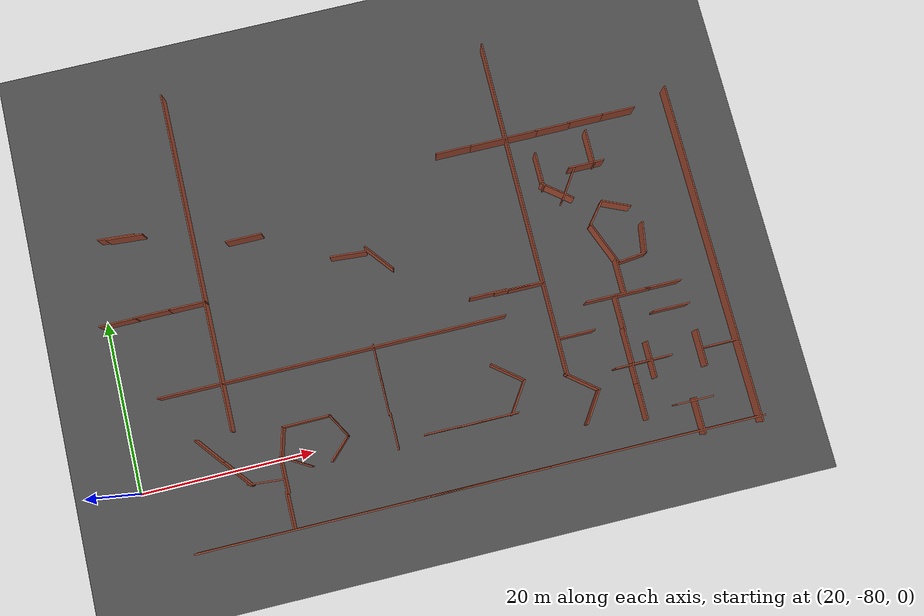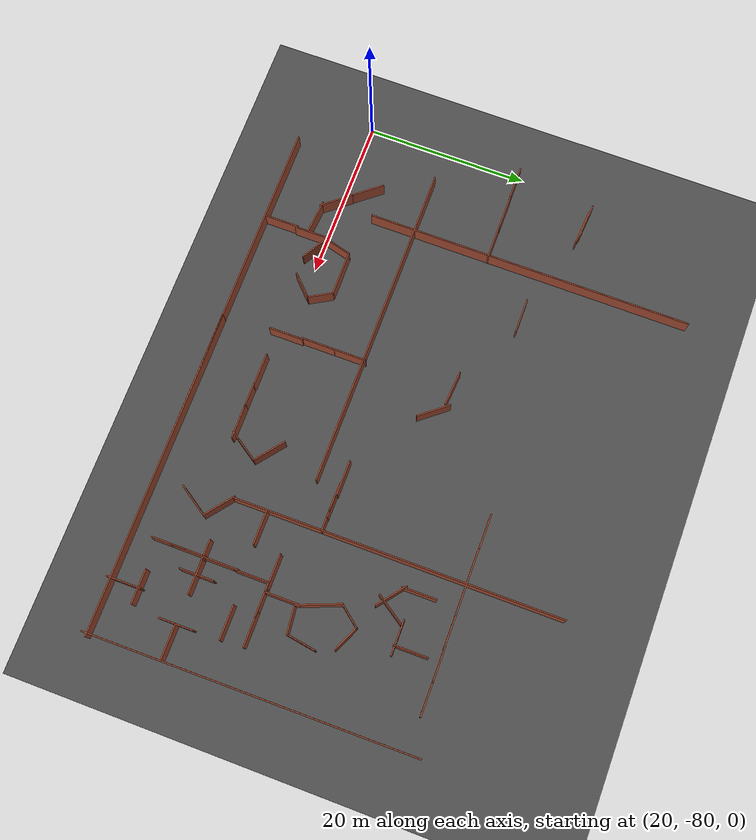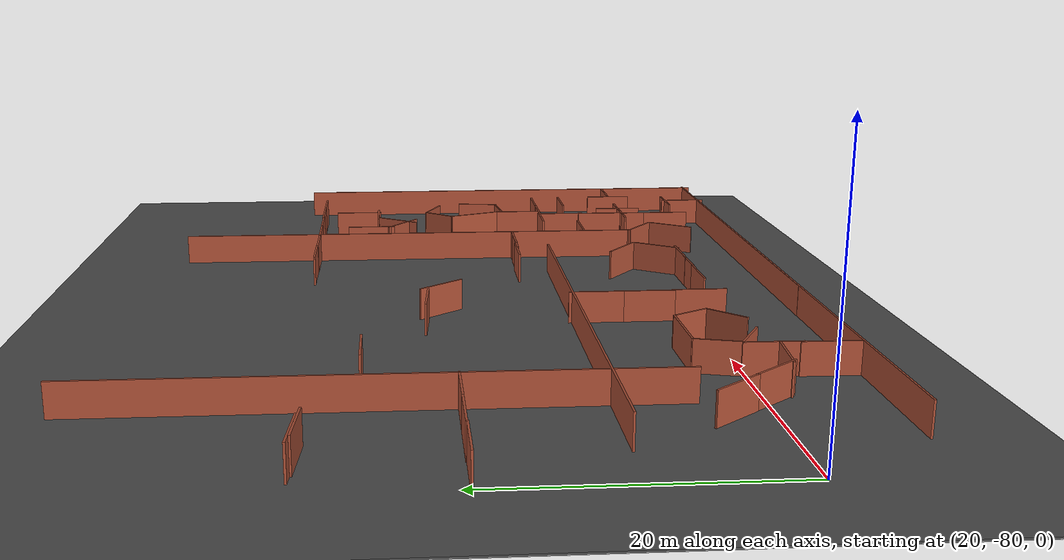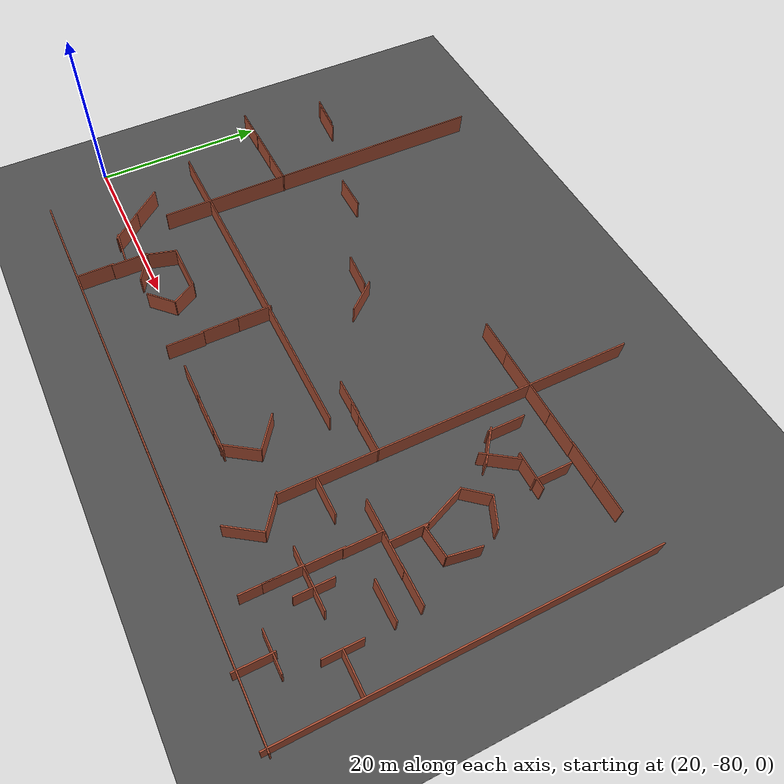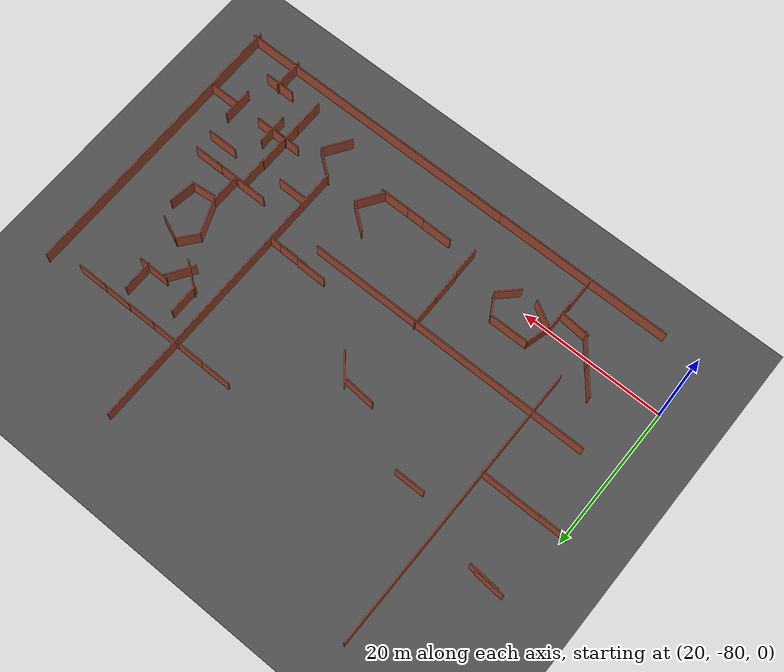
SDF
<sdf version="1.6">
 <world name="default">
  <model name="ground_plane">
   <static>1</static>
   <link name="link">
    <collision name="collision">
     <geometry><plane><normal>0 0 1</normal><size>200 200</size></plane></geometry>
     <surface><friction><ode><mu>100</mu><mu2>50</mu2></ode></friction></surface>
    </collision>
    <visual name="visual">
     <cast_shadows>0</cast_shadows>
     <geometry><plane><normal>0 0 1</normal><size>200 200</size></plane></geometry>
     <material>
      <script><uri>file://media/materials/scripts/gazebo.material</uri><name>Gazebo/Grey</name></script>
     </material>
    </visual>
   </link>
  </model>
  <model name="asphalt_plane">
   <static>1</static>
   <link name="link">
    <collision name="collision"><geometry><box><size>200 200 0.1</size></box></geometry></collision>
    <visual name="visual">
     <cast_shadows>0</cast_shadows>
     <geometry><box><size>200 200 0.1</size></box></geometry>
     <material>
      <script>
       <uri>model://asphalt_plane/materials/scripts</uri>
       <uri>model://asphalt_plane/materials/textures</uri>
       <name>vrc/asphalt</name>
      </script>
     </material>
    </visual>
   </link>
  </model>
  <model name="longwall_0_clone">
   <pose>70.0948 -58.1794 0 0 0 -1.57092</pose>
   <link name="Wall_0">
    <collision name="Wall_0_Collision">
     <geometry><box><size>40.5 0.15 2.5</size></box></geometry>
     <pose>0 0 1.25 0 -0 0</pose>
    </collision>
    <visual name="Wall_0_Visual">
     <pose>0 0 1.25 0 -0 0</pose>
     <geometry><box><size>40.5 0.15 2.5</size></box></geometry>
     <material>
      <script><uri>file://media/materials/scripts/gazebo.material</uri><name>Gazebo/Bricks</name></script>
      <ambient>1 1 1 1</ambient>
     </material>
    </visual>
    <pose>1e-06 0 0 0 -0 0</pose>
   </link>
   <static>1</static>
  </model>
  <model name="worlds_0_clone">
   <pose>49 -59 0 0 -0 1.49697</pose>
   <link name="Wall_0">
    <collision name="Wall_0_Collision">
     <geometry><box><size>4.25 0.15 2.5</size></box></geometry>
     <pose>0 0 1.25 0 -0 0</pose>
    </collision>
    <visual name="Wall_0_Visual">
     <pose>0 0 1.25 0 -0 0</pose>
     <geometry><box><size>4.25 0.15 2.5</size></box></geometry>
     <material>
      <script><uri>file://media/materials/scripts/gazebo.material</uri><name>Gazebo/Bricks</name></script>
      <ambient>1 1 1 1</ambient>
     </material>
    </visual>
    <pose>0 -0 0 0 -0 1.5708</pose>
   </link>
   <static>1</static>
  </model>
  <model name="worlds_2_clone">
   <pose>52.3469 -60.1873 0 0 -0 0.67691</pose>
   <link name="Wall_0">
    <collision name="Wall_0_Collision">
     <geometry><box><size>4.25 0.15 2.5</size></box></geometry>
     <pose>0 0 1.25 0 -0 0</pose>
    </collision>
    <visual name="Wall_0_Visual">
     <pose>0 0 1.25 0 -0 0</pose>
     <geometry><box><size>4.25 0.15 2.5</size></box></geometry>
     <material>
      <script><uri>file://media/materials/scripts/gazebo.material</uri><name>Gazebo/Bricks</name></script>
      <ambient>1 1 1 1</ambient>
     </material>
    </visual>
    <pose>0 -0 0 0 -0 1.5708</pose>
   </link>
   <static>1</static>
  </model>
  <model name="worlds_1_clone_0_clone">
   <pose>63.736 -49.7946 0 0 0 -1.57092</pose>
   <link name="Wall_0">
    <collision name="Wall_0_Collision">
     <geometry><box><size>4.25 0.15 2.5</size></box></geometry>
     <pose>0 0 1.25 0 -0 0</pose>
    </collision>
    <visual name="Wall_0_Visual">
     <pose>0 0 1.25 0 -0 0</pose>
     <geometry><box><size>4.25 0.15 2.5</size></box></geometry>
     <material>
      <script><uri>file://media/materials/scripts/gazebo.material</uri><name>Gazebo/Bricks</name></script>
      <ambient>1 1 1 1</ambient>
     </material>
    </visual>
    <pose>0 -0 0 0 -0 1.5708</pose>
   </link>
   <static>1</static>
  </model>
  <model name="worlds_1_clone_0_clone_clone">
   <pose>67.9203 -49.8236 0 0 0 -1.57092</pose>
   <link name="Wall_0">
    <collision name="Wall_0_Collision">
     <geometry><box><size>4.25 0.15 2.5</size></box></geometry>
     <pose>0 0 1.25 0 -0 0</pose>
    </collision>
    <visual name="Wall_0_Visual">
     <pose>0 0 1.25 0 -0 0</pose>
     <geometry><box><size>4.25 0.15 2.5</size></box></geometry>
     <material>
      <script><uri>file://media/materials/scripts/gazebo.material</uri><name>Gazebo/Bricks</name></script>
      <ambient>1 1 1 1</ambient>
     </material>
    </visual>
    <pose>0 -0 0 0 -0 1.5708</pose>
   </link>
   <static>1</static>
  </model>
  <model name="worlds_1_clone_0_clone_clone_0_clone_clone_0">
   <pose>37.6699 -54.2985 0 0 0 -1.57092</pose>
   <link name="Wall_0">
    <collision name="Wall_0_Collision">
     <geometry><box><size>4.25 0.15 2.5</size></box></geometry>
     <pose>0 0 1.25 0 -0 0</pose>
    </collision>
    <visual name="Wall_0_Visual">
     <pose>0 0 1.25 0 -0 0</pose>
     <geometry><box><size>4.25 0.15 2.5</size></box></geometry>
     <material>
      <script><uri>file://media/materials/scripts/gazebo.material</uri><name>Gazebo/Bricks</name></script>
      <ambient>1 1 1 1</ambient>
     </material>
    </visual>
    <pose>0 -0 0 0 -0 1.5708</pose>
   </link>
   <static>1</static>
  </model>
  <model name="longwall_clone_clone_1">
   <pose>45.3217 -87.8888 0 0 -0 0</pose>
   <link name="Wall_0">
    <collision name="Wall_0_Collision">
     <geometry><box><size>40.5 0.15 2.5</size></box></geometry>
     <pose>0 0 1.25 0 -0 0</pose>
    </collision>
    <visual name="Wall_0_Visual">
     <pose>0 0 1.25 0 -0 0</pose>
     <geometry><box><size>40.5 0.15 2.5</size></box></geometry>
     <material>
      <script><uri>file://media/materials/scripts/gazebo.material</uri><name>Gazebo/Bricks</name></script>
      <ambient>1 1 1 1</ambient>
     </material>
    </visual>
    <pose>1e-06 0 0 0 -0 0</pose>
   </link>
   <static>1</static>
  </model>
  <model name="longwall_clone_clone_3_clone_0">
   <pose>89.9316 -68.2995 0 0 0 -1.56602</pose>
   <link name="Wall_0">
    <collision name="Wall_0_Collision">
     <geometry><box><size>40.5 0.15 2.5</size></box></geometry>
     <pose>0 0 1.25 0 -0 0</pose>
    </collision>
    <visual name="Wall_0_Visual">
     <pose>0 0 1.25 0 -0 0</pose>
     <geometry><box><size>40.5 0.15 2.5</size></box></geometry>
     <material>
      <script><uri>file://media/materials/scripts/gazebo.material</uri><name>Gazebo/Bricks</name></script>
      <ambient>1 1 1 1</ambient>
     </material>
    </visual>
    <pose>1e-06 0 0 0 -0 0</pose>
   </link>
   <static>1</static>
  </model>
  <model name="longwall_clone_clone_0">
   <pose>44.6402 -70.1055 0 0 -0 0</pose>
   <link name="Wall_0">
    <collision name="Wall_0_Collision">
     <geometry><box><size>40.5 0.15 2.5</size></box></geometry>
     <pose>0 0 1.25 0 -0 0</pose>
    </collision>
    <visual name="Wall_0_Visual">
     <pose>0 0 1.25 0 -0 0</pose>
     <geometry><box><size>40.5 0.15 2.5</size></box></geometry>
     <material>
      <script><uri>file://media/materials/scripts/gazebo.material</uri><name>Gazebo/Bricks</name></script>
      <ambient>1 1 1 1</ambient>
     </material>
    </visual>
    <pose>1e-06 0 0 0 -0 0</pose>
   </link>
   <static>1</static>
  </model>
  <model name="longwall_0_clone_clone">
   <pose>31.77 -55.4466 0 0 0 -1.57092</pose>
   <link name="Wall_0">
    <collision name="Wall_0_Collision">
     <geometry><box><size>40.5 0.15 2.5</size></box></geometry>
     <pose>0 0 1.25 0 -0 0</pose>
    </collision>
    <visual name="Wall_0_Visual">
     <pose>0 0 1.25 0 -0 0</pose>
     <geometry><box><size>40.5 0.15 2.5</size></box></geometry>
     <material>
      <script><uri>file://media/materials/scripts/gazebo.material</uri><name>Gazebo/Bricks</name></script>
      <ambient>1 1 1 1</ambient>
     </material>
    </visual>
    <pose>1e-06 0 0 0 -0 0</pose>
   </link>
   <static>1</static>
  </model>
  <model name="worlds_1_clone_0_clone_clone_0_clone_clone_clone">
   <pose>71.7506 -49.7978 0 0 0 -1.57092</pose>
   <link name="Wall_0">
    <collision name="Wall_0_Collision">
     <geometry><box><size>4.25 0.15 2.5</size></box></geometry>
     <pose>0 0 1.25 0 -0 0</pose>
    </collision>
    <visual name="Wall_0_Visual">
     <pose>0 0 1.25 0 -0 0</pose>
     <geometry><box><size>4.25 0.15 2.5</size></box></geometry>
     <material>
      <script><uri>file://media/materials/scripts/gazebo.material</uri><name>Gazebo/Bricks</name></script>
      <ambient>1 1 1 1</ambient>
     </material>
    </visual>
    <pose>0 -0 0 0 -0 1.5708</pose>
   </link>
   <static>1</static>
  </model>
  <model name="worlds_1_clone_0_clone_clone_0_clone_clone_clone_0">
   <pose>75.7367 -49.7778 0 0 0 -1.57092</pose>
   <link name="Wall_0">
    <collision name="Wall_0_Collision">
     <geometry><box><size>4.25 0.15 2.5</size></box></geometry>
     <pose>0 0 1.25 0 -0 0</pose>
    </collision>
    <visual name="Wall_0_Visual">
     <pose>0 0 1.25 0 -0 0</pose>
     <geometry><box><size>4.25 0.15 2.5</size></box></geometry>
     <material>
      <script><uri>file://media/materials/scripts/gazebo.material</uri><name>Gazebo/Bricks</name></script>
      <ambient>1 1 1 1</ambient>
     </material>
    </visual>
    <pose>0 -0 0 0 -0 1.5708</pose>
   </link>
   <static>1</static>
  </model>
  <model name="worlds_1_clone_0_clone_clone_0_clone_clone_clone_1">
   <pose>79.6674 -49.7138 0 0 0 -1.57092</pose>
   <link name="Wall_0">
    <collision name="Wall_0_Collision">
     <geometry><box><size>4.25 0.15 2.5</size></box></geometry>
     <pose>0 0 1.25 0 -0 0</pose>
    </collision>
    <visual name="Wall_0_Visual">
     <pose>0 0 1.25 0 -0 0</pose>
     <geometry><box><size>4.25 0.15 2.5</size></box></geometry>
     <material>
      <script><uri>file://media/materials/scripts/gazebo.material</uri><name>Gazebo/Bricks</name></script>
      <ambient>1 1 1 1</ambient>
     </material>
    </visual>
    <pose>0 -0 0 0 -0 1.5708</pose>
   </link>
   <static>1</static>
  </model>
  <model name="worlds_1_clone_0_clone_clone_0_clone_clone_clone_2">
   <pose>83.5636 -49.7075 0 0 0 -1.57092</pose>
   <link name="Wall_0">
    <collision name="Wall_0_Collision">
     <geometry><box><size>4.25 0.15 2.5</size></box></geometry>
     <pose>0 0 1.25 0 -0 0</pose>
    </collision>
    <visual name="Wall_0_Visual">
     <pose>0 0 1.25 0 -0 0</pose>
     <geometry><box><size>4.25 0.15 2.5</size></box></geometry>
     <material>
      <script><uri>file://media/materials/scripts/gazebo.material</uri><name>Gazebo/Bricks</name></script>
      <ambient>1 1 1 1</ambient>
     </material>
    </visual>
    <pose>0 -0 0 0 -0 1.5708</pose>
   </link>
   <static>1</static>
  </model>
  <model name="worlds_1_clone_1_clone_clone_0_clone">
   <pose>49.3914 -71.9286 0 0 -0 0</pose>
   <link name="Wall_0">
    <collision name="Wall_0_Collision">
     <geometry><box><size>4.25 0.15 2.5</size></box></geometry>
     <pose>0 0 1.25 0 -0 0</pose>
    </collision>
    <visual name="Wall_0_Visual">
     <pose>0 0 1.25 0 -0 0</pose>
     <geometry><box><size>4.25 0.15 2.5</size></box></geometry>
     <material>
      <script><uri>file://media/materials/scripts/gazebo.material</uri><name>Gazebo/Bricks</name></script>
      <ambient>1 1 1 1</ambient>
     </material>
    </visual>
    <pose>0 -0 0 0 -0 1.5708</pose>
   </link>
   <static>1</static>
  </model>
  <model name="worlds_1_clone_1_clone_clone_0_clone_0">
   <pose>49.402 -75.9018 0 0 -0 0</pose>
   <link name="Wall_0">
    <collision name="Wall_0_Collision">
     <geometry><box><size>4.25 0.15 2.5</size></box></geometry>
     <pose>0 0 1.25 0 -0 0</pose>
    </collision>
    <visual name="Wall_0_Visual">
     <pose>0 0 1.25 0 -0 0</pose>
     <geometry><box><size>4.25 0.15 2.5</size></box></geometry>
     <material>
      <script><uri>file://media/materials/scripts/gazebo.material</uri><name>Gazebo/Bricks</name></script>
      <ambient>1 1 1 1</ambient>
     </material>
    </visual>
    <pose>0 -0 0 0 -0 1.5708</pose>
   </link>
   <static>1</static>
  </model>
  <model name="worlds_1_clone_1_clone_clone_0_clone_1">
   <pose>49.5458 -79.924 0 0 -0 0</pose>
   <link name="Wall_0">
    <collision name="Wall_0_Collision">
     <geometry><box><size>4.25 0.15 2.5</size></box></geometry>
     <pose>0 0 1.25 0 -0 0</pose>
    </collision>
    <visual name="Wall_0_Visual">
     <pose>0 0 1.25 0 -0 0</pose>
     <geometry><box><size>4.25 0.15 2.5</size></box></geometry>
     <material>
      <script><uri>file://media/materials/scripts/gazebo.material</uri><name>Gazebo/Bricks</name></script>
      <ambient>1 1 1 1</ambient>
     </material>
    </visual>
    <pose>0 -0 0 0 -0 1.5708</pose>
   </link>
   <static>1</static>
  </model>
  <model name="room1_clone_0">
   <pose>40.4655 -79.0163 0 0 -0 0</pose>
   <link name="Wall_11">
    <collision name="Wall_11_Collision">
     <geometry><box><size>3.25 0.15 2.5</size></box></geometry>
     <pose>0 0 1.25 0 -0 0</pose>
    </collision>
    <visual name="Wall_11_Visual">
     <pose>0 0 1.25 0 -0 0</pose>
     <geometry><box><size>3.25 0.15 2.5</size></box></geometry>
     <material>
      <script><uri>file://media/materials/scripts/gazebo.material</uri><name>Gazebo/Bricks</name></script>
      <ambient>1 1 1 1</ambient>
     </material>
    </visual>
    <pose>3.12132 1.19483 0 0 0 -1.0472</pose>
   </link>
   <link name="Wall_12">
    <collision name="Wall_12_Collision">
     <geometry><box><size>3.5 0.15 2.5</size></box></geometry>
     <pose>0 0 1.25 0 -0 0</pose>
    </collision>
    <visual name="Wall_12_Visual">
     <pose>0 0 1.25 0 -0 0</pose>
     <geometry><box><size>3.5 0.15 2.5</size></box></geometry>
     <material>
      <script><uri>file://media/materials/scripts/gazebo.material</uri><name>Gazebo/Bricks</name></script>
      <ambient>1 1 1 1</ambient>
     </material>
    </visual>
    <pose>2.71192 -1.33192 0 0 0 -2.35619</pose>
   </link>
   <link name="Wall_7">
    <collision name="Wall_7_Collision">
     <geometry><box><size>5.52935 0.15 2.5</size></box></geometry>
     <pose>0 0 1.25 0 -0 0</pose>
    </collision>
    <visual name="Wall_7_Visual">
     <pose>0 0 1.25 0 -0 0</pose>
     <geometry><box><size>5.52935 0.15 2.5</size></box></geometry>
     <material>
      <script><uri>file://media/materials/scripts/gazebo.material</uri><name>Gazebo/Bricks</name></script>
      <ambient>1 1 1 1</ambient>
     </material>
    </visual>
    <pose>-0.343285 2.51793 0 0 0 -3.13444</pose>
   </link>
   <link name="Wall_8">
    <collision name="Wall_8_Collision">
     <geometry><box><size>3.5 0.15 2.5</size></box></geometry>
     <pose>0 0 1.25 0 -0 0</pose>
    </collision>
    <visual name="Wall_8_Visual">
     <pose>0 0 1.25 0 -0 0</pose>
     <geometry><box><size>3.5 0.15 2.5</size></box></geometry>
     <material>
      <script><uri>file://media/materials/scripts/gazebo.material</uri><name>Gazebo/Bricks</name></script>
      <ambient>1 1 1 1</ambient>
     </material>
    </visual>
    <pose>-3.46641 0.880761 0 0 0 -1.8326</pose>
   </link>
   <link name="Wall_9">
    <collision name="Wall_9_Collision">
     <geometry><box><size>3.75 0.15 2.5</size></box></geometry>
     <pose>0 0 1.25 0 -0 0</pose>
    </collision>
    <visual name="Wall_9_Visual">
     <pose>0 0 1.25 0 -0 0</pose>
     <geometry><box><size>3.75 0.15 2.5</size></box></geometry>
     <material>
      <script><uri>file://media/materials/scripts/gazebo.material</uri><name>Gazebo/Bricks</name></script>
      <ambient>1 1 1 1</ambient>
     </material>
    </visual>
    <pose>-2.34109 -1.63716 0 0 0 -0.523599</pose>
   </link>
   <static>1</static>
  </model>
  <model name="room1_clone_1">
   <pose>80.2942 -63.443 0 0 -0 1.93941</pose>
   <link name="Wall_11">
    <collision name="Wall_11_Collision">
     <geometry><box><size>3.25 0.15 2.5</size></box></geometry>
     <pose>0 0 1.25 0 -0 0</pose>
    </collision>
    <visual name="Wall_11_Visual">
     <pose>0 0 1.25 0 -0 0</pose>
     <geometry><box><size>3.25 0.15 2.5</size></box></geometry>
     <material>
      <script><uri>file://media/materials/scripts/gazebo.material</uri><name>Gazebo/Bricks</name></script>
      <ambient>1 1 1 1</ambient>
     </material>
    </visual>
    <pose>3.12132 1.19483 0 0 0 -1.0472</pose>
   </link>
   <link name="Wall_12">
    <collision name="Wall_12_Collision">
     <geometry><box><size>3.5 0.15 2.5</size></box></geometry>
     <pose>0 0 1.25 0 -0 0</pose>
    </collision>
    <visual name="Wall_12_Visual">
     <pose>0 0 1.25 0 -0 0</pose>
     <geometry><box><size>3.5 0.15 2.5</size></box></geometry>
     <material>
      <script><uri>file://media/materials/scripts/gazebo.material</uri><name>Gazebo/Bricks</name></script>
      <ambient>1 1 1 1</ambient>
     </material>
    </visual>
    <pose>2.71192 -1.33192 0 0 0 -2.35619</pose>
   </link>
   <link name="Wall_7">
    <collision name="Wall_7_Collision">
     <geometry><box><size>5.52935 0.15 2.5</size></box></geometry>
     <pose>0 0 1.25 0 -0 0</pose>
    </collision>
    <visual name="Wall_7_Visual">
     <pose>0 0 1.25 0 -0 0</pose>
     <geometry><box><size>5.52935 0.15 2.5</size></box></geometry>
     <material>
      <script><uri>file://media/materials/scripts/gazebo.material</uri><name>Gazebo/Bricks</name></script>
      <ambient>1 1 1 1</ambient>
     </material>
    </visual>
    <pose>-0.343285 2.51793 0 0 0 -3.13444</pose>
   </link>
   <link name="Wall_8">
    <collision name="Wall_8_Collision">
     <geometry><box><size>3.5 0.15 2.5</size></box></geometry>
     <pose>0 0 1.25 0 -0 0</pose>
    </collision>
    <visual name="Wall_8_Visual">
     <pose>0 0 1.25 0 -0 0</pose>
     <geometry><box><size>3.5 0.15 2.5</size></box></geometry>
     <material>
      <script><uri>file://media/materials/scripts/gazebo.material</uri><name>Gazebo/Bricks</name></script>
      <ambient>1 1 1 1</ambient>
     </material>
    </visual>
    <pose>-3.46641 0.880761 0 0 0 -1.8326</pose>
   </link>
   <link name="Wall_9">
    <collision name="Wall_9_Collision">
     <geometry><box><size>3.75 0.15 2.5</size></box></geometry>
     <pose>0 0 1.25 0 -0 0</pose>
    </collision>
    <visual name="Wall_9_Visual">
     <pose>0 0 1.25 0 -0 0</pose>
     <geometry><box><size>3.75 0.15 2.5</size></box></geometry>
     <material>
      <script><uri>file://media/materials/scripts/gazebo.material</uri><name>Gazebo/Bricks</name></script>
      <ambient>1 1 1 1</ambient>
     </material>
    </visual>
    <pose>-2.34109 -1.63716 0 0 0 -0.523599</pose>
   </link>
   <static>1</static>
  </model>
  <model name="worlds_1_clone_0_clone_clone_0_clone_2_clone_0_clone_clone_0">
   <pose>68.044 -67.3876 0 0 0 -1.57092</pose>
   <link name="Wall_0">
    <collision name="Wall_0_Collision">
     <geometry><box><size>4.25 0.15 2.5</size></box></geometry>
     <pose>0 0 1.25 0 -0 0</pose>
    </collision>
    <visual name="Wall_0_Visual">
     <pose>0 0 1.25 0 -0 0</pose>
     <geometry><box><size>4.25 0.15 2.5</size></box></geometry>
     <material>
      <script><uri>file://media/materials/scripts/gazebo.material</uri><name>Gazebo/Bricks</name></script>
      <ambient>1 1 1 1</ambient>
     </material>
    </visual>
    <pose>0 -0 0 0 -0 1.5708</pose>
   </link>
   <static>1</static>
  </model>
  <model name="worlds_1_clone_0_clone_clone_0_clone_2_clone_0_clone_clone_1">
   <pose>66.3888 -67.3478 0 0 0 -1.57092</pose>
   <link name="Wall_0">
    <collision name="Wall_0_Collision">
     <geometry><box><size>4.25 0.15 2.5</size></box></geometry>
     <pose>0 0 1.25 0 -0 0</pose>
    </collision>
    <visual name="Wall_0_Visual">
     <pose>0 0 1.25 0 -0 0</pose>
     <geometry><box><size>4.25 0.15 2.5</size></box></geometry>
     <material>
      <script><uri>file://media/materials/scripts/gazebo.material</uri><name>Gazebo/Bricks</name></script>
      <ambient>1 1 1 1</ambient>
     </material>
    </visual>
    <pose>0 -0 0 0 -0 1.5708</pose>
   </link>
   <static>1</static>
  </model>
  <model name="worlds_1_clone_0_clone_clone_0_clone_2_clone_0_clone_clone_2">
   <pose>63.5182 -67.2416 0 0 0 -1.57092</pose>
   <link name="Wall_0">
    <collision name="Wall_0_Collision">
     <geometry><box><size>4.25 0.15 2.5</size></box></geometry>
     <pose>0 0 1.25 0 -0 0</pose>
    </collision>
    <visual name="Wall_0_Visual">
     <pose>0 0 1.25 0 -0 0</pose>
     <geometry><box><size>4.25 0.15 2.5</size></box></geometry>
     <material>
      <script><uri>file://media/materials/scripts/gazebo.material</uri><name>Gazebo/Bricks</name></script>
      <ambient>1 1 1 1</ambient>
     </material>
    </visual>
    <pose>0 -0 0 0 -0 1.5708</pose>
   </link>
   <static>1</static>
  </model>
  <model name="worlds_1_clone_0_clone_clone_0_clone_clone_clone_4">
   <pose>29.7635 -60.5389 0 0 0 -1.57092</pose>
   <link name="Wall_0">
    <collision name="Wall_0_Collision">
     <geometry><box><size>4.25 0.15 2.5</size></box></geometry>
     <pose>0 0 1.25 0 -0 0</pose>
    </collision>
    <visual name="Wall_0_Visual">
     <pose>0 0 1.25 0 -0 0</pose>
     <geometry><box><size>4.25 0.15 2.5</size></box></geometry>
     <material>
      <script><uri>file://media/materials/scripts/gazebo.material</uri><name>Gazebo/Bricks</name></script>
      <ambient>1 1 1 1</ambient>
     </material>
    </visual>
    <pose>0 -0 0 0 -0 1.5708</pose>
   </link>
   <static>1</static>
  </model>
  <model name="worlds_1_clone_0_clone_clone_0_clone_clone_clone_5">
   <pose>25.6804 -60.5311 0 0 0 -1.57092</pose>
   <link name="Wall_0">
    <collision name="Wall_0_Collision">
     <geometry><box><size>4.25 0.15 2.5</size></box></geometry>
     <pose>0 0 1.25 0 -0 0</pose>
    </collision>
    <visual name="Wall_0_Visual">
     <pose>0 0 1.25 0 -0 0</pose>
     <geometry><box><size>4.25 0.15 2.5</size></box></geometry>
     <material>
      <script><uri>file://media/materials/scripts/gazebo.material</uri><name>Gazebo/Bricks</name></script>
      <ambient>1 1 1 1</ambient>
     </material>
    </visual>
    <pose>0 -0 0 0 -0 1.5708</pose>
   </link>
   <static>1</static>
  </model>
  <model name="worlds_1_clone_0_clone_clone_0_clone_clone_clone_6">
   <pose>21.6635 -60.5771 0 0 0 -1.57092</pose>
   <link name="Wall_0">
    <collision name="Wall_0_Collision">
     <geometry><box><size>4.25 0.15 2.5</size></box></geometry>
     <pose>0 0 1.25 0 -0 0</pose>
    </collision>
    <visual name="Wall_0_Visual">
     <pose>0 0 1.25 0 -0 0</pose>
     <geometry><box><size>4.25 0.15 2.5</size></box></geometry>
     <material>
      <script><uri>file://media/materials/scripts/gazebo.material</uri><name>Gazebo/Bricks</name></script>
      <ambient>1 1 1 1</ambient>
     </material>
    </visual>
    <pose>0 -0 0 0 -0 1.5708</pose>
   </link>
   <static>1</static>
  </model>
  <model name="worlds_2_clone_clone_clone_clone_clone_0">
   <pose>28.8699 -77.3214 0 0 -0 0.67691</pose>
   <link name="Wall_0">
    <collision name="Wall_0_Collision">
     <geometry><box><size>4.25 0.15 2.5</size></box></geometry>
     <pose>0 0 1.25 0 -0 0</pose>
    </collision>
    <visual name="Wall_0_Visual">
     <pose>0 0 1.25 0 -0 0</pose>
     <geometry><box><size>4.25 0.15 2.5</size></box></geometry>
     <material>
      <script><uri>file://media/materials/scripts/gazebo.material</uri><name>Gazebo/Bricks</name></script>
      <ambient>1 1 1 1</ambient>
     </material>
    </visual>
    <pose>0 -0 0 0 -0 1.5708</pose>
   </link>
   <static>1</static>
  </model>
  <model name="worlds_1_clone_1_clone_clone_0_clone_9_clone">
   <pose>36.2856 -85.6988 0 0 -0 0</pose>
   <link name="Wall_0">
    <collision name="Wall_0_Collision">
     <geometry><box><size>4.25 0.15 2.5</size></box></geometry>
     <pose>0 0 1.25 0 -0 0</pose>
    </collision>
    <visual name="Wall_0_Visual">
     <pose>0 0 1.25 0 -0 0</pose>
     <geometry><box><size>4.25 0.15 2.5</size></box></geometry>
     <material>
      <script><uri>file://media/materials/scripts/gazebo.material</uri><name>Gazebo/Bricks</name></script>
      <ambient>1 1 1 1</ambient>
     </material>
    </visual>
    <pose>0 -0 0 0 -0 1.5708</pose>
   </link>
   <static>1</static>
  </model>
  <model name="worlds_1_clone_1_clone_clone_0_clone_9_clone_0">
   <pose>36.4214 -81.7739 0 0 -0 0</pose>
   <link name="Wall_0">
    <collision name="Wall_0_Collision">
     <geometry><box><size>4.25 0.15 2.5</size></box></geometry>
     <pose>0 0 1.25 0 -0 0</pose>
    </collision>
    <visual name="Wall_0_Visual">
     <pose>0 0 1.25 0 -0 0</pose>
     <geometry><box><size>4.25 0.15 2.5</size></box></geometry>
     <material>
      <script><uri>file://media/materials/scripts/gazebo.material</uri><name>Gazebo/Bricks</name></script>
      <ambient>1 1 1 1</ambient>
     </material>
    </visual>
    <pose>0 -0 0 0 -0 1.5708</pose>
   </link>
   <static>1</static>
  </model>
  <model name="worlds_2_clone_clone_clone_clone_clone_1_clone">
   <pose>34.3447 -82.0215 0 0 -0 1.48429</pose>
   <link name="Wall_0">
    <collision name="Wall_0_Collision">
     <geometry><box><size>4.25 0.15 2.5</size></box></geometry>
     <pose>0 0 1.25 0 -0 0</pose>
    </collision>
    <visual name="Wall_0_Visual">
     <pose>0 0 1.25 0 -0 0</pose>
     <geometry><box><size>4.25 0.15 2.5</size></box></geometry>
     <material>
      <script><uri>file://media/materials/scripts/gazebo.material</uri><name>Gazebo/Bricks</name></script>
      <ambient>1 1 1 1</ambient>
     </material>
    </visual>
    <pose>0 -0 0 0 -0 1.5708</pose>
   </link>
   <static>1</static>
  </model>
  <model name="worlds_2_clone_clone_clone_clone_clone_1_clone_0">
   <pose>31.4278 -80.4502 0 0 -0 0.67691</pose>
   <link name="Wall_0">
    <collision name="Wall_0_Collision">
     <geometry><box><size>4.25 0.15 2.5</size></box></geometry>
     <pose>0 0 1.25 0 -0 0</pose>
    </collision>
    <visual name="Wall_0_Visual">
     <pose>0 0 1.25 0 -0 0</pose>
     <geometry><box><size>4.25 0.15 2.5</size></box></geometry>
     <material>
      <script><uri>file://media/materials/scripts/gazebo.material</uri><name>Gazebo/Bricks</name></script>
      <ambient>1 1 1 1</ambient>
     </material>
    </visual>
    <pose>0 -0 0 0 -0 1.5708</pose>
   </link>
   <static>1</static>
  </model>
  <model name="worlds_0_clone_clone_clone">
   <pose>24.3074 -50.9942 0 0 -0 1.49697</pose>
   <link name="Wall_0">
    <collision name="Wall_0_Collision">
     <geometry><box><size>4.25 0.15 2.5</size></box></geometry>
     <pose>0 0 1.25 0 -0 0</pose>
    </collision>
    <visual name="Wall_0_Visual">
     <pose>0 0 1.25 0 -0 0</pose>
     <geometry><box><size>4.25 0.15 2.5</size></box></geometry>
     <material>
      <script><uri>file://media/materials/scripts/gazebo.material</uri><name>Gazebo/Bricks</name></script>
      <ambient>1 1 1 1</ambient>
     </material>
    </visual>
    <pose>0 -0 0 0 -0 1.5708</pose>
   </link>
   <static>1</static>
  </model>
  <model name="worlds_0_clone_clone_clone_0">
   <pose>23.3769 -50.8024 0 0 -0 1.49697</pose>
   <link name="Wall_0">
    <collision name="Wall_0_Collision">
     <geometry><box><size>4.25 0.15 2.5</size></box></geometry>
     <pose>0 0 1.25 0 -0 0</pose>
    </collision>
    <visual name="Wall_0_Visual">
     <pose>0 0 1.25 0 -0 0</pose>
     <geometry><box><size>4.25 0.15 2.5</size></box></geometry>
     <material>
      <script><uri>file://media/materials/scripts/gazebo.material</uri><name>Gazebo/Bricks</name></script>
      <ambient>1 1 1 1</ambient>
     </material>
    </visual>
    <pose>0 -0 0 0 -0 1.5708</pose>
   </link>
   <static>1</static>
  </model>
  <model name="worlds_1_clone_0_clone_clone_0_clone_clone_0_clone_clone_clone_clone">
   <pose>54.8178 -81.1067 0 0 0 -1.57092</pose>
   <link name="Wall_0">
    <collision name="Wall_0_Collision">
     <geometry><box><size>4.25 0.15 2.5</size></box></geometry>
     <pose>0 0 1.25 0 -0 0</pose>
    </collision>
    <visual name="Wall_0_Visual">
     <pose>0 0 1.25 0 -0 0</pose>
     <geometry><box><size>4.25 0.15 2.5</size></box></geometry>
     <material>
      <script><uri>file://media/materials/scripts/gazebo.material</uri><name>Gazebo/Bricks</name></script>
      <ambient>1 1 1 1</ambient>
     </material>
    </visual>
    <pose>0 -0 0 0 -0 1.5708</pose>
   </link>
   <static>1</static>
  </model>
  <model name="worlds_1_clone_0_clone_clone_0_clone_clone_0_clone_clone_clone_clone_0">
   <pose>58.7296 -81.1514 0 0 0 -1.57092</pose>
   <link name="Wall_0">
    <collision name="Wall_0_Collision">
     <geometry><box><size>4.25 0.15 2.5</size></box></geometry>
     <pose>0 0 1.25 0 -0 0</pose>
    </collision>
    <visual name="Wall_0_Visual">
     <pose>0 0 1.25 0 -0 0</pose>
     <geometry><box><size>4.25 0.15 2.5</size></box></geometry>
     <material>
      <script><uri>file://media/materials/scripts/gazebo.material</uri><name>Gazebo/Bricks</name></script>
      <ambient>1 1 1 1</ambient>
     </material>
    </visual>
    <pose>0 -0 0 0 -0 1.5708</pose>
   </link>
   <static>1</static>
  </model>
  <model name="worlds_1_clone_0_clone_clone_0_clone_clone_0_clone_clone_clone_clone_1">
   <pose>61.493 -81.135 0 0 0 -1.57092</pose>
   <link name="Wall_0">
    <collision name="Wall_0_Collision">
     <geometry><box><size>4.25 0.15 2.5</size></box></geometry>
     <pose>0 0 1.25 0 -0 0</pose>
    </collision>
    <visual name="Wall_0_Visual">
     <pose>0 0 1.25 0 -0 0</pose>
     <geometry><box><size>4.25 0.15 2.5</size></box></geometry>
     <material>
      <script><uri>file://media/materials/scripts/gazebo.material</uri><name>Gazebo/Bricks</name></script>
      <ambient>1 1 1 1</ambient>
     </material>
    </visual>
    <pose>0 -0 0 0 -0 1.5708</pose>
   </link>
   <static>1</static>
  </model>
  <model name="worlds_1_clone_1_clone_7_clone_clone_clone_clone_0">
   <pose>64.0196 -79.5132 0 0 0 -0.589382</pose>
   <link name="Wall_0">
    <collision name="Wall_0_Collision">
     <geometry><box><size>4.25 0.15 2.5</size></box></geometry>
     <pose>0 0 1.25 0 -0 0</pose>
    </collision>
    <visual name="Wall_0_Visual">
     <pose>0 0 1.25 0 -0 0</pose>
     <geometry><box><size>4.25 0.15 2.5</size></box></geometry>
     <material>
      <script><uri>file://media/materials/scripts/gazebo.material</uri><name>Gazebo/Bricks</name></script>
      <ambient>1 1 1 1</ambient>
     </material>
    </visual>
    <pose>0 -0 0 0 -0 1.5708</pose>
   </link>
   <static>1</static>
  </model>
  <model name="worlds_1_clone_1_clone_7_clone_clone_0_clone_0_clone">
   <pose>63.5356 -76.452 0 0 -0 0.90029</pose>
   <link name="Wall_0">
    <collision name="Wall_0_Collision">
     <geometry><box><size>4.25 0.15 2.5</size></box></geometry>
     <pose>0 0 1.25 0 -0 0</pose>
    </collision>
    <visual name="Wall_0_Visual">
     <pose>0 0 1.25 0 -0 0</pose>
     <geometry><box><size>4.25 0.15 2.5</size></box></geometry>
     <material>
      <script><uri>file://media/materials/scripts/gazebo.material</uri><name>Gazebo/Bricks</name></script>
      <ambient>1 1 1 1</ambient>
     </material>
    </visual>
    <pose>0 -0 0 0 -0 1.5708</pose>
   </link>
   <static>1</static>
  </model>
  <model name="worlds_1_clone_0_clone_clone_clone">
   <pose>83.5149 -73.633 0 0 0 -1.57092</pose>
   <link name="Wall_0">
    <collision name="Wall_0_Collision">
     <geometry><box><size>4.25 0.15 2.5</size></box></geometry>
     <pose>0 0 1.25 0 -0 0</pose>
    </collision>
    <visual name="Wall_0_Visual">
     <pose>0 0 1.25 0 -0 0</pose>
     <geometry><box><size>4.25 0.15 2.5</size></box></geometry>
     <material>
      <script><uri>file://media/materials/scripts/gazebo.material</uri><name>Gazebo/Bricks</name></script>
      <ambient>1 1 1 1</ambient>
     </material>
    </visual>
    <pose>0 -0 0 0 -0 1.5708</pose>
   </link>
   <static>1</static>
  </model>
  <model name="worlds_1_clone_0_clone_clone_clone_0">
   <pose>83.2444 -84.4697 0 0 0 -1.57092</pose>
   <link name="Wall_0">
    <collision name="Wall_0_Collision">
     <geometry><box><size>4.25 0.15 2.5</size></box></geometry>
     <pose>0 0 1.25 0 -0 0</pose>
    </collision>
    <visual name="Wall_0_Visual">
     <pose>0 0 1.25 0 -0 0</pose>
     <geometry><box><size>4.25 0.15 2.5</size></box></geometry>
     <material>
      <script><uri>file://media/materials/scripts/gazebo.material</uri><name>Gazebo/Bricks</name></script>
      <ambient>1 1 1 1</ambient>
     </material>
    </visual>
    <pose>0 -0 0 0 -0 1.5708</pose>
   </link>
   <static>1</static>
  </model>
  <model name="worlds_1_clone_0_clone_clone_clone_1">
   <pose>77.5975 -78.9334 0 0 0 -1.57092</pose>
   <link name="Wall_0">
    <collision name="Wall_0_Collision">
     <geometry><box><size>4.25 0.15 2.5</size></box></geometry>
     <pose>0 0 1.25 0 -0 0</pose>
    </collision>
    <visual name="Wall_0_Visual">
     <pose>0 0 1.25 0 -0 0</pose>
     <geometry><box><size>4.25 0.15 2.5</size></box></geometry>
     <material>
      <script><uri>file://media/materials/scripts/gazebo.material</uri><name>Gazebo/Bricks</name></script>
      <ambient>1 1 1 1</ambient>
     </material>
    </visual>
    <pose>0 -0 0 0 -0 1.5708</pose>
   </link>
   <static>1</static>
  </model>
  <model name="worlds_1_clone_0_clone_clone_clone_2">
   <pose>87.7856 -78.9348 0 0 0 -1.57092</pose>
   <link name="Wall_0">
    <collision name="Wall_0_Collision">
     <geometry><box><size>4.25 0.15 2.5</size></box></geometry>
     <pose>0 0 1.25 0 -0 0</pose>
    </collision>
    <visual name="Wall_0_Visual">
     <pose>0 0 1.25 0 -0 0</pose>
     <geometry><box><size>4.25 0.15 2.5</size></box></geometry>
     <material>
      <script><uri>file://media/materials/scripts/gazebo.material</uri><name>Gazebo/Bricks</name></script>
      <ambient>1 1 1 1</ambient>
     </material>
    </visual>
    <pose>0 -0 0 0 -0 1.5708</pose>
   </link>
   <static>1</static>
  </model>
  <model name="worlds_1_clone_clone_clone_clone">
   <pose>85.6489 -78.894 0 0 -0 0</pose>
   <link name="Wall_0">
    <collision name="Wall_0_Collision">
     <geometry><box><size>4.25 0.15 2.5</size></box></geometry>
     <pose>0 0 1.25 0 -0 0</pose>
    </collision>
    <visual name="Wall_0_Visual">
     <pose>0 0 1.25 0 -0 0</pose>
     <geometry><box><size>4.25 0.15 2.5</size></box></geometry>
     <material>
      <script><uri>file://media/materials/scripts/gazebo.material</uri><name>Gazebo/Bricks</name></script>
      <ambient>1 1 1 1</ambient>
     </material>
    </visual>
    <pose>0 -0 0 0 -0 1.5708</pose>
   </link>
   <static>1</static>
  </model>
  <model name="worlds_1_clone_clone_clone_clone_0">
   <pose>79.734 -78.8659 0 0 -0 0</pose>
   <link name="Wall_0">
    <collision name="Wall_0_Collision">
     <geometry><box><size>4.25 0.15 2.5</size></box></geometry>
     <pose>0 0 1.25 0 -0 0</pose>
    </collision>
    <visual name="Wall_0_Visual">
     <pose>0 0 1.25 0 -0 0</pose>
     <geometry><box><size>4.25 0.15 2.5</size></box></geometry>
     <material>
      <script><uri>file://media/materials/scripts/gazebo.material</uri><name>Gazebo/Bricks</name></script>
      <ambient>1 1 1 1</ambient>
     </material>
    </visual>
    <pose>0 -0 0 0 -0 1.5708</pose>
   </link>
   <static>1</static>
  </model>
  <model name="worlds_1_clone_clone_clone_clone_1">
   <pose>83.381 -86.268 0 0 -0 0</pose>
   <link name="Wall_0">
    <collision name="Wall_0_Collision">
     <geometry><box><size>4.25 0.15 2.5</size></box></geometry>
     <pose>0 0 1.25 0 -0 0</pose>
    </collision>
    <visual name="Wall_0_Visual">
     <pose>0 0 1.25 0 -0 0</pose>
     <geometry><box><size>4.25 0.15 2.5</size></box></geometry>
     <material>
      <script><uri>file://media/materials/scripts/gazebo.material</uri><name>Gazebo/Bricks</name></script>
      <ambient>1 1 1 1</ambient>
     </material>
    </visual>
    <pose>0 -0 0 0 -0 1.5708</pose>
   </link>
   <static>1</static>
  </model>
  <model name="worlds_1_clone_clone_clone_clone_2">
   <pose>77.5229 -80.8692 0 0 -0 0</pose>
   <link name="Wall_0">
    <collision name="Wall_0_Collision">
     <geometry><box><size>4.25 0.15 2.5</size></box></geometry>
     <pose>0 0 1.25 0 -0 0</pose>
    </collision>
    <visual name="Wall_0_Visual">
     <pose>0 0 1.25 0 -0 0</pose>
     <geometry><box><size>4.25 0.15 2.5</size></box></geometry>
     <material>
      <script><uri>file://media/materials/scripts/gazebo.material</uri><name>Gazebo/Bricks</name></script>
      <ambient>1 1 1 1</ambient>
     </material>
    </visual>
    <pose>0 -0 0 0 -0 1.5708</pose>
   </link>
   <static>1</static>
  </model>
  <model name="worlds_1_clone_clone_clone_clone_3">
   <pose>77.5192 -83.2309 0 0 -0 0</pose>
   <link name="Wall_0">
    <collision name="Wall_0_Collision">
     <geometry><box><size>4.25 0.15 2.5</size></box></geometry>
     <pose>0 0 1.25 0 -0 0</pose>
    </collision>
    <visual name="Wall_0_Visual">
     <pose>0 0 1.25 0 -0 0</pose>
     <geometry><box><size>4.25 0.15 2.5</size></box></geometry>
     <material>
      <script><uri>file://media/materials/scripts/gazebo.material</uri><name>Gazebo/Bricks</name></script>
      <ambient>1 1 1 1</ambient>
     </material>
    </visual>
    <pose>0 -0 0 0 -0 1.5708</pose>
   </link>
   <static>1</static>
  </model>
  <model name="worlds_1_clone_clone_clone_clone_4">
   <pose>77.6096 -76.7617 0 0 -0 0</pose>
   <link name="Wall_0">
    <collision name="Wall_0_Collision">
     <geometry><box><size>4.25 0.15 2.5</size></box></geometry>
     <pose>0 0 1.25 0 -0 0</pose>
    </collision>
    <visual name="Wall_0_Visual">
     <pose>0 0 1.25 0 -0 0</pose>
     <geometry><box><size>4.25 0.15 2.5</size></box></geometry>
     <material>
      <script><uri>file://media/materials/scripts/gazebo.material</uri><name>Gazebo/Bricks</name></script>
      <ambient>1 1 1 1</ambient>
     </material>
    </visual>
    <pose>0 -0 0 0 -0 1.5708</pose>
   </link>
   <static>1</static>
  </model>
  <model name="worlds_1_clone_clone_clone_clone_5">
   <pose>77.707 -72.8815 0 0 -0 0</pose>
   <link name="Wall_0">
    <collision name="Wall_0_Collision">
     <geometry><box><size>4.25 0.15 2.5</size></box></geometry>
     <pose>0 0 1.25 0 -0 0</pose>
    </collision>
    <visual name="Wall_0_Visual">
     <pose>0 0 1.25 0 -0 0</pose>
     <geometry><box><size>4.25 0.15 2.5</size></box></geometry>
     <material>
      <script><uri>file://media/materials/scripts/gazebo.material</uri><name>Gazebo/Bricks</name></script>
      <ambient>1 1 1 1</ambient>
     </material>
    </visual>
    <pose>0 -0 0 0 -0 1.5708</pose>
   </link>
   <static>1</static>
  </model>
  <model name="worlds_1_clone_0_clone_clone_clone_clone">
   <pose>79.7687 -70.8654 0 0 0 -1.57092</pose>
   <link name="Wall_0">
    <collision name="Wall_0_Collision">
     <geometry><box><size>4.25 0.15 2.5</size></box></geometry>
     <pose>0 0 1.25 0 -0 0</pose>
    </collision>
    <visual name="Wall_0_Visual">
     <pose>0 0 1.25 0 -0 0</pose>
     <geometry><box><size>4.25 0.15 2.5</size></box></geometry>
     <material>
      <script><uri>file://media/materials/scripts/gazebo.material</uri><name>Gazebo/Bricks</name></script>
      <ambient>1 1 1 1</ambient>
     </material>
    </visual>
    <pose>0 -0 0 0 -0 1.5708</pose>
   </link>
   <static>1</static>
  </model>
  <model name="worlds_1_clone_0_clone_clone_clone_clone_0">
   <pose>83.3358 -70.8342 0 0 0 -1.57092</pose>
   <link name="Wall_0">
    <collision name="Wall_0_Collision">
     <geometry><box><size>4.25 0.15 2.5</size></box></geometry>
     <pose>0 0 1.25 0 -0 0</pose>
    </collision>
    <visual name="Wall_0_Visual">
     <pose>0 0 1.25 0 -0 0</pose>
     <geometry><box><size>4.25 0.15 2.5</size></box></geometry>
     <material>
      <script><uri>file://media/materials/scripts/gazebo.material</uri><name>Gazebo/Bricks</name></script>
      <ambient>1 1 1 1</ambient>
     </material>
    </visual>
    <pose>0 -0 0 0 -0 1.5708</pose>
   </link>
   <static>1</static>
  </model>
  <model name="worlds_1_clone_0_clone_clone_clone_clone_1">
   <pose>80.0078 -78.8997 0 0 0 -1.57092</pose>
   <link name="Wall_0">
    <collision name="Wall_0_Collision">
     <geometry><box><size>4.25 0.15 2.5</size></box></geometry>
     <pose>0 0 1.25 0 -0 0</pose>
    </collision>
    <visual name="Wall_0_Visual">
     <pose>0 0 1.25 0 -0 0</pose>
     <geometry><box><size>4.25 0.15 2.5</size></box></geometry>
     <material>
      <script><uri>file://media/materials/scripts/gazebo.material</uri><name>Gazebo/Bricks</name></script>
      <ambient>1 1 1 1</ambient>
     </material>
    </visual>
    <pose>0 -0 0 0 -0 1.5708</pose>
   </link>
   <static>1</static>
  </model>
  <model name="worlds_1_clone_0_clone_clone_clone_clone_2">
   <pose>76.3534 -70.7976 0 0 0 -1.57092</pose>
   <link name="Wall_0">
    <collision name="Wall_0_Collision">
     <geometry><box><size>4.25 0.15 2.5</size></box></geometry>
     <pose>0 0 1.25 0 -0 0</pose>
    </collision>
    <visual name="Wall_0_Visual">
     <pose>0 0 1.25 0 -0 0</pose>
     <geometry><box><size>4.25 0.15 2.5</size></box></geometry>
     <material>
      <script><uri>file://media/materials/scripts/gazebo.material</uri><name>Gazebo/Bricks</name></script>
      <ambient>1 1 1 1</ambient>
     </material>
    </visual>
    <pose>0 -0 0 0 -0 1.5708</pose>
   </link>
   <static>1</static>
  </model>
  <model name="worlds_1_clone_0_clone_clone_clone_clone_3">
   <pose>72.2405 -74.1054 0 0 0 -1.57092</pose>
   <link name="Wall_0">
    <collision name="Wall_0_Collision">
     <geometry><box><size>4.25 0.15 2.5</size></box></geometry>
     <pose>0 0 1.25 0 -0 0</pose>
    </collision>
    <visual name="Wall_0_Visual">
     <pose>0 0 1.25 0 -0 0</pose>
     <geometry><box><size>4.25 0.15 2.5</size></box></geometry>
     <material>
      <script><uri>file://media/materials/scripts/gazebo.material</uri><name>Gazebo/Bricks</name></script>
      <ambient>1 1 1 1</ambient>
     </material>
    </visual>
    <pose>0 -0 0 0 -0 1.5708</pose>
   </link>
   <static>1</static>
  </model>
  <model name="worlds_1_clone_clone_clone_clone_5_clone">
   <pose>78.8638 -68.7584 0 0 -0 0</pose>
   <link name="Wall_0">
    <collision name="Wall_0_Collision">
     <geometry><box><size>4.25 0.15 2.5</size></box></geometry>
     <pose>0 0 1.25 0 -0 0</pose>
    </collision>
    <visual name="Wall_0_Visual">
     <pose>0 0 1.25 0 -0 0</pose>
     <geometry><box><size>4.25 0.15 2.5</size></box></geometry>
     <material>
      <script><uri>file://media/materials/scripts/gazebo.material</uri><name>Gazebo/Bricks</name></script>
      <ambient>1 1 1 1</ambient>
     </material>
    </visual>
    <pose>0 -0 0 0 -0 1.5708</pose>
   </link>
   <static>1</static>
  </model>
  <model name="worlds_1_clone_1_clone_7_clone_clone_0_clone_0_clone_clone">
   <pose>71.537 -79.4816 0 0 -0 0.90029</pose>
   <link name="Wall_0">
    <collision name="Wall_0_Collision">
     <geometry><box><size>4.25 0.15 2.5</size></box></geometry>
     <pose>0 0 1.25 0 -0 0</pose>
    </collision>
    <visual name="Wall_0_Visual">
     <pose>0 0 1.25 0 -0 0</pose>
     <geometry><box><size>4.25 0.15 2.5</size></box></geometry>
     <material>
      <script><uri>file://media/materials/scripts/gazebo.material</uri><name>Gazebo/Bricks</name></script>
      <ambient>1 1 1 1</ambient>
     </material>
    </visual>
    <pose>0 -0 0 0 -0 1.5708</pose>
   </link>
   <static>1</static>
  </model>
  <model name="worlds_1_clone_1_clone_7_clone_clone_clone_clone_0_clone">
   <pose>71.9701 -82.5172 0 0 0 -0.589382</pose>
   <link name="Wall_0">
    <collision name="Wall_0_Collision">
     <geometry><box><size>4.25 0.15 2.5</size></box></geometry>
     <pose>0 0 1.25 0 -0 0</pose>
    </collision>
    <visual name="Wall_0_Visual">
     <pose>0 0 1.25 0 -0 0</pose>
     <geometry><box><size>4.25 0.15 2.5</size></box></geometry>
     <material>
      <script><uri>file://media/materials/scripts/gazebo.material</uri><name>Gazebo/Bricks</name></script>
      <ambient>1 1 1 1</ambient>
     </material>
    </visual>
    <pose>0 -0 0 0 -0 1.5708</pose>
   </link>
   <static>1</static>
  </model>
  <model name="worlds_1_clone_1_clone_7_clone_clone_clone_clone_0_clone_0">
   <pose>75.7817 -56.9213 0 0 0 -0.589382</pose>
   <link name="Wall_0">
    <collision name="Wall_0_Collision">
     <geometry><box><size>4.25 0.15 2.5</size></box></geometry>
     <pose>0 0 1.25 0 -0 0</pose>
    </collision>
    <visual name="Wall_0_Visual">
     <pose>0 0 1.25 0 -0 0</pose>
     <geometry><box><size>4.25 0.15 2.5</size></box></geometry>
     <material>
      <script><uri>file://media/materials/scripts/gazebo.material</uri><name>Gazebo/Bricks</name></script>
      <ambient>1 1 1 1</ambient>
     </material>
    </visual>
    <pose>0 -0 0 0 -0 1.5708</pose>
   </link>
   <static>1</static>
  </model>
  <model name="worlds_1_clone_1_clone_7_clone_clone_0_clone_0_clone_clone_clone">
   <pose>74.3284 -57.3587 0 0 -0 0.90029</pose>
   <link name="Wall_0">
    <collision name="Wall_0_Collision">
     <geometry><box><size>4.25 0.15 2.5</size></box></geometry>
     <pose>0 0 1.25 0 -0 0</pose>
    </collision>
    <visual name="Wall_0_Visual">
     <pose>0 0 1.25 0 -0 0</pose>
     <geometry><box><size>4.25 0.15 2.5</size></box></geometry>
     <material>
      <script><uri>file://media/materials/scripts/gazebo.material</uri><name>Gazebo/Bricks</name></script>
      <ambient>1 1 1 1</ambient>
     </material>
    </visual>
    <pose>0 -0 0 0 -0 1.5708</pose>
   </link>
   <static>1</static>
  </model>
  <model name="worlds_1_clone_0_clone_clone_clone_clone_3_clone">
   <pose>78.4155 -55.0538 0 0 0 -1.57092</pose>
   <link name="Wall_0">
    <collision name="Wall_0_Collision">
     <geometry><box><size>4.25 0.15 2.5</size></box></geometry>
     <pose>0 0 1.25 0 -0 0</pose>
    </collision>
    <visual name="Wall_0_Visual">
     <pose>0 0 1.25 0 -0 0</pose>
     <geometry><box><size>4.25 0.15 2.5</size></box></geometry>
     <material>
      <script><uri>file://media/materials/scripts/gazebo.material</uri><name>Gazebo/Bricks</name></script>
      <ambient>1 1 1 1</ambient>
     </material>
    </visual>
    <pose>0 -0 0 0 -0 1.5708</pose>
   </link>
   <static>1</static>
  </model>
  <model name="worlds_1_clone_clone_clone_clone_5_clone_0">
   <pose>79.3488 -53.1598 0 0 -0 0</pose>
   <link name="Wall_0">
    <collision name="Wall_0_Collision">
     <geometry><box><size>4.25 0.15 2.5</size></box></geometry>
     <pose>0 0 1.25 0 -0 0</pose>
    </collision>
    <visual name="Wall_0_Visual">
     <pose>0 0 1.25 0 -0 0</pose>
     <geometry><box><size>4.25 0.15 2.5</size></box></geometry>
     <material>
      <script><uri>file://media/materials/scripts/gazebo.material</uri><name>Gazebo/Bricks</name></script>
      <ambient>1 1 1 1</ambient>
     </material>
    </visual>
    <pose>0 -0 0 0 -0 1.5708</pose>
   </link>
   <static>1</static>
  </model>
  <model name="worlds_1_clone_clone_clone_clone_5_clone_1">
   <pose>72.9562 -54.4612 0 0 -0 0</pose>
   <link name="Wall_0">
    <collision name="Wall_0_Collision">
     <geometry><box><size>4.25 0.15 2.5</size></box></geometry>
     <pose>0 0 1.25 0 -0 0</pose>
    </collision>
    <visual name="Wall_0_Visual">
     <pose>0 0 1.25 0 -0 0</pose>
     <geometry><box><size>4.25 0.15 2.5</size></box></geometry>
     <material>
      <script><uri>file://media/materials/scripts/gazebo.material</uri><name>Gazebo/Bricks</name></script>
      <ambient>1 1 1 1</ambient>
     </material>
    </visual>
    <pose>0 -0 0 0 -0 1.5708</pose>
   </link>
   <static>1</static>
  </model>
  <model name="longwall_clone_clone_1_clone">
   <pose>70.225 -87.8698 0 0 -0 0</pose>
   <link name="Wall_0">
    <collision name="Wall_0_Collision">
     <geometry><box><size>40.5 0.15 2.5</size></box></geometry>
     <pose>0 0 1.25 0 -0 0</pose>
    </collision>
    <visual name="Wall_0_Visual">
     <pose>0 0 1.25 0 -0 0</pose>
     <geometry><box><size>40.5 0.15 2.5</size></box></geometry>
     <material>
      <script><uri>file://media/materials/scripts/gazebo.material</uri><name>Gazebo/Bricks</name></script>
      <ambient>1 1 1 1</ambient>
     </material>
    </visual>
    <pose>1e-06 0 0 0 -0 0</pose>
   </link>
   <static>1</static>
  </model>
 </world>
</sdf>
